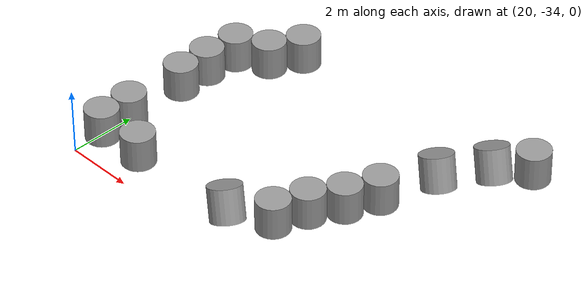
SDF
<sdf version="1.7">
 <world name="default">
  <model name="unit_cylinder_85_clone_244_clone_826">
   <pose>21.4776 -26.7429 0.45106 -6.5e-05 -4e-06 0.006508</pose>
   <link name="link">
    <inertial>
     <mass>1</mass>
     <inertia><ixx>0.145833</ixx><ixy>0</ixy><ixz>0</ixz><iyy>0.145833</iyy><iyz>0</iyz><izz>0.125</izz></inertia>
    </inertial>
    <collision name="collision">
     <geometry><cylinder><radius>0.5</radius><length>1</length></cylinder></geometry>
    </collision>
    <visual name="visual">
     <geometry><cylinder><radius>0.5</radius><length>1</length></cylinder></geometry>
     <material>
      <script><name>Gazebo/Grey</name><uri>file://media/materials/scripts/gazebo.material</uri></script>
     </material>
    </visual>
   </link>
  </model>
  <model name="unit_cylinder_85_clone_244_clone_827">
   <pose>20.9861 -27.6139 0.451116 -6.6e-05 -8e-06 -0.035231</pose>
   <link name="link">
    <inertial>
     <mass>1</mass>
     <inertia><ixx>0.145833</ixx><ixy>0</ixy><ixz>0</ixz><iyy>0.145833</iyy><iyz>0</iyz><izz>0.125</izz></inertia>
    </inertial>
    <collision name="collision">
     <geometry><cylinder><radius>0.5</radius><length>1</length></cylinder></geometry>
    </collision>
    <visual name="visual">
     <geometry><cylinder><radius>0.5</radius><length>1</length></cylinder></geometry>
     <material>
      <script><name>Gazebo/Grey</name><uri>file://media/materials/scripts/gazebo.material</uri></script>
     </material>
    </visual>
   </link>
  </model>
  <model name="unit_cylinder_85_clone_244_clone_828">
   <pose>20.091 -28.0641 0.451131 -6.6e-05 -2e-06 0.044442</pose>
   <link name="link">
    <inertial>
     <mass>1</mass>
     <inertia><ixx>0.145833</ixx><ixy>0</ixy><ixz>0</ixz><iyy>0.145833</iyy><iyz>0</iyz><izz>0.125</izz></inertia>
    </inertial>
    <collision name="collision">
     <geometry><cylinder><radius>0.5</radius><length>1</length></cylinder></geometry>
    </collision>
    <visual name="visual">
     <geometry><cylinder><radius>0.5</radius><length>1</length></cylinder></geometry>
     <material>
      <script><name>Gazebo/Grey</name><uri>file://media/materials/scripts/gazebo.material</uri></script>
     </material>
    </visual>
   </link>
  </model>
  <model name="unit_cylinder_85_clone_244_clone_829">
   <pose>19.9923 -29.0768 0.45121 -6e-05 -5e-06 0.045074</pose>
   <link name="link">
    <inertial>
     <mass>1</mass>
     <inertia><ixx>0.145833</ixx><ixy>0</ixy><ixz>0</ixz><iyy>0.145833</iyy><iyz>0</iyz><izz>0.125</izz></inertia>
    </inertial>
    <collision name="collision">
     <geometry><cylinder><radius>0.5</radius><length>1</length></cylinder></geometry>
    </collision>
    <visual name="visual">
     <geometry><cylinder><radius>0.5</radius><length>1</length></cylinder></geometry>
     <material>
      <script><name>Gazebo/Grey</name><uri>file://media/materials/scripts/gazebo.material</uri></script>
     </material>
    </visual>
   </link>
  </model>
  <model name="unit_cylinder_85_clone_244_clone_830">
   <pose>20.0077 -30.08 0.45132 -5.8e-05 -5.8e-05 -0.011583</pose>
   <link name="link">
    <inertial>
     <mass>1</mass>
     <inertia><ixx>0.145833</ixx><ixy>0</ixy><ixz>0</ixz><iyy>0.145833</iyy><iyz>0</iyz><izz>0.125</izz></inertia>
    </inertial>
    <collision name="collision">
     <geometry><cylinder><radius>0.5</radius><length>1</length></cylinder></geometry>
    </collision>
    <visual name="visual">
     <geometry><cylinder><radius>0.5</radius><length>1</length></cylinder></geometry>
     <material>
      <script><name>Gazebo/Grey</name><uri>file://media/materials/scripts/gazebo.material</uri></script>
     </material>
    </visual>
   </link>
  </model>
  <model name="unit_cylinder_85_clone_244_clone_832">
   <pose>21.4819 -33 0.451003 0.000101 5.7e-05 0.000529</pose>
   <link name="link">
    <inertial>
     <mass>1</mass>
     <inertia><ixx>0.145833</ixx><ixy>0</ixy><ixz>0</ixz><iyy>0.145833</iyy><iyz>0</iyz><izz>0.125</izz></inertia>
    </inertial>
    <collision name="collision">
     <geometry><cylinder><radius>0.5</radius><length>1</length></cylinder></geometry>
    </collision>
    <visual name="visual">
     <geometry><cylinder><radius>0.5</radius><length>1</length></cylinder></geometry>
     <material>
      <script><name>Gazebo/Grey</name><uri>file://media/materials/scripts/gazebo.material</uri></script>
     </material>
    </visual>
   </link>
  </model>
  <model name="unit_cylinder_85_clone_244_clone_833">
   <pose>20.0001 -33.0001 0.451089 9.7e-05 6.1e-05 0.00047</pose>
   <link name="link">
    <inertial>
     <mass>1</mass>
     <inertia><ixx>0.145833</ixx><ixy>0</ixy><ixz>0</ixz><iyy>0.145833</iyy><iyz>0</iyz><izz>0.125</izz></inertia>
    </inertial>
    <collision name="collision">
     <geometry><cylinder><radius>0.5</radius><length>1</length></cylinder></geometry>
    </collision>
    <visual name="visual">
     <geometry><cylinder><radius>0.5</radius><length>1</length></cylinder></geometry>
     <material>
      <script><name>Gazebo/Grey</name><uri>file://media/materials/scripts/gazebo.material</uri></script>
     </material>
    </visual>
   </link>
  </model>
  <model name="unit_cylinder_85_clone_244_clone_834">
   <pose>20 -32.0001 0.451189 9.8e-05 6.2e-05 0.000506</pose>
   <link name="link">
    <inertial>
     <mass>1</mass>
     <inertia><ixx>0.145833</ixx><ixy>0</ixy><ixz>0</ixz><iyy>0.145833</iyy><iyz>0</iyz><izz>0.125</izz></inertia>
    </inertial>
    <collision name="collision">
     <geometry><cylinder><radius>0.5</radius><length>1</length></cylinder></geometry>
    </collision>
    <visual name="visual">
     <geometry><cylinder><radius>0.5</radius><length>1</length></cylinder></geometry>
     <material>
      <script><name>Gazebo/Grey</name><uri>file://media/materials/scripts/gazebo.material</uri></script>
     </material>
    </visual>
   </link>
  </model>
  <model name="unit_cylinder_85_clone_244_clone_1097">
   <pose>29.4988 -25.9072 0.45196 0.001795 6e-05 -0.010496</pose>
   <link name="link">
    <inertial>
     <mass>1</mass>
     <inertia><ixx>0.145833</ixx><ixy>0</ixy><ixz>0</ixz><iyy>0.145833</iyy><iyz>0</iyz><izz>0.125</izz></inertia>
    </inertial>
    <collision name="collision">
     <geometry><cylinder><radius>0.5</radius><length>1</length></cylinder></geometry>
    </collision>
    <visual name="visual">
     <geometry><cylinder><radius>0.5</radius><length>1</length></cylinder></geometry>
     <material>
      <script><name>Gazebo/Grey</name><uri>file://media/materials/scripts/gazebo.material</uri></script>
     </material>
    </visual>
   </link>
  </model>
  <model name="unit_cylinder_85_clone_244_clone_1098">
   <pose>28.6726 -26.6092 0.406552 -0.212569 -0.347349 0.018914</pose>
   <link name="link">
    <inertial>
     <mass>1</mass>
     <inertia><ixx>0.145833</ixx><ixy>0</ixy><ixz>0</ixz><iyy>0.145833</iyy><iyz>0</iyz><izz>0.125</izz></inertia>
    </inertial>
    <collision name="collision">
     <geometry><cylinder><radius>0.5</radius><length>1</length></cylinder></geometry>
    </collision>
    <visual name="visual">
     <geometry><cylinder><radius>0.5</radius><length>1</length></cylinder></geometry>
     <material>
      <script><name>Gazebo/Grey</name><uri>file://media/materials/scripts/gazebo.material</uri></script>
     </material>
    </visual>
   </link>
  </model>
  <model name="unit_cylinder_85_clone_244_clone_1099">
   <pose>27.8454 -27.9098 0.395475 -0.194541 -0.310567 0.026518</pose>
   <link name="link">
    <inertial>
     <mass>1</mass>
     <inertia><ixx>0.145833</ixx><ixy>0</ixy><ixz>0</ixz><iyy>0.145833</iyy><iyz>0</iyz><izz>0.125</izz></inertia>
    </inertial>
    <collision name="collision">
     <geometry><cylinder><radius>0.5</radius><length>1</length></cylinder></geometry>
    </collision>
    <visual name="visual">
     <geometry><cylinder><radius>0.5</radius><length>1</length></cylinder></geometry>
     <material>
      <script><name>Gazebo/Grey</name><uri>file://media/materials/scripts/gazebo.material</uri></script>
     </material>
    </visual>
   </link>
  </model>
  <model name="unit_cylinder_85_clone_244_clone_1100">
   <pose>27.3702 -29.6107 0.451048 0.0007 0.001191 -0.014127</pose>
   <link name="link">
    <inertial>
     <mass>1</mass>
     <inertia><ixx>0.145833</ixx><ixy>0</ixy><ixz>0</ixz><iyy>0.145833</iyy><iyz>0</iyz><izz>0.125</izz></inertia>
    </inertial>
    <collision name="collision">
     <geometry><cylinder><radius>0.5</radius><length>1</length></cylinder></geometry>
    </collision>
    <visual name="visual">
     <geometry><cylinder><radius>0.5</radius><length>1</length></cylinder></geometry>
     <material>
      <script><name>Gazebo/Grey</name><uri>file://media/materials/scripts/gazebo.material</uri></script>
     </material>
    </visual>
   </link>
  </model>
  <model name="unit_cylinder_85_clone_244_clone_1101">
   <pose>26.9671 -30.5424 0.450855 0.000695 0.001202 -0.019483</pose>
   <link name="link">
    <inertial>
     <mass>1</mass>
     <inertia><ixx>0.145833</ixx><ixy>0</ixy><ixz>0</ixz><iyy>0.145833</iyy><iyz>0</iyz><izz>0.125</izz></inertia>
    </inertial>
    <collision name="collision">
     <geometry><cylinder><radius>0.5</radius><length>1</length></cylinder></geometry>
    </collision>
    <visual name="visual">
     <geometry><cylinder><radius>0.5</radius><length>1</length></cylinder></geometry>
     <material>
      <script><name>Gazebo/Grey</name><uri>file://media/materials/scripts/gazebo.material</uri></script>
     </material>
    </visual>
   </link>
  </model>
  <model name="unit_cylinder_85_clone_244_clone_1102">
   <pose>26.4287 -31.3866 0.450871 0.000708 0.001244 -0.02732</pose>
   <link name="link">
    <inertial>
     <mass>1</mass>
     <inertia><ixx>0.145833</ixx><ixy>0</ixy><ixz>0</ixz><iyy>0.145833</iyy><iyz>0</iyz><izz>0.125</izz></inertia>
    </inertial>
    <collision name="collision">
     <geometry><cylinder><radius>0.5</radius><length>1</length></cylinder></geometry>
    </collision>
    <visual name="visual">
     <geometry><cylinder><radius>0.5</radius><length>1</length></cylinder></geometry>
     <material>
      <script><name>Gazebo/Grey</name><uri>file://media/materials/scripts/gazebo.material</uri></script>
     </material>
    </visual>
   </link>
  </model>
  <model name="unit_cylinder_85_clone_244_clone_1103">
   <pose>26.0742 -32.3244 0.450656 0.000667 0.001131 -0.015022</pose>
   <link name="link">
    <inertial>
     <mass>1</mass>
     <inertia><ixx>0.145833</ixx><ixy>0</ixy><ixz>0</ixz><iyy>0.145833</iyy><iyz>0</iyz><izz>0.125</izz></inertia>
    </inertial>
    <collision name="collision">
     <geometry><cylinder><radius>0.5</radius><length>1</length></cylinder></geometry>
    </collision>
    <visual name="visual">
     <geometry><cylinder><radius>0.5</radius><length>1</length></cylinder></geometry>
     <material>
      <script><name>Gazebo/Grey</name><uri>file://media/materials/scripts/gazebo.material</uri></script>
     </material>
    </visual>
   </link>
  </model>
  <model name="unit_cylinder_85_clone_244_clone_1104">
   <pose>24.8435 -32.8774 0.4004 -0.201236 -0.327169 0.019433</pose>
   <link name="link">
    <inertial>
     <mass>1</mass>
     <inertia><ixx>0.145833</ixx><ixy>0</ixy><ixz>0</ixz><iyy>0.145833</iyy><iyz>0</iyz><izz>0.125</izz></inertia>
    </inertial>
    <collision name="collision">
     <geometry><cylinder><radius>0.5</radius><length>1</length></cylinder></geometry>
    </collision>
    <visual name="visual">
     <geometry><cylinder><radius>0.5</radius><length>1</length></cylinder></geometry>
     <material>
      <script><name>Gazebo/Grey</name><uri>file://media/materials/scripts/gazebo.material</uri></script>
     </material>
    </visual>
   </link>
  </model>
 </world>
</sdf>
